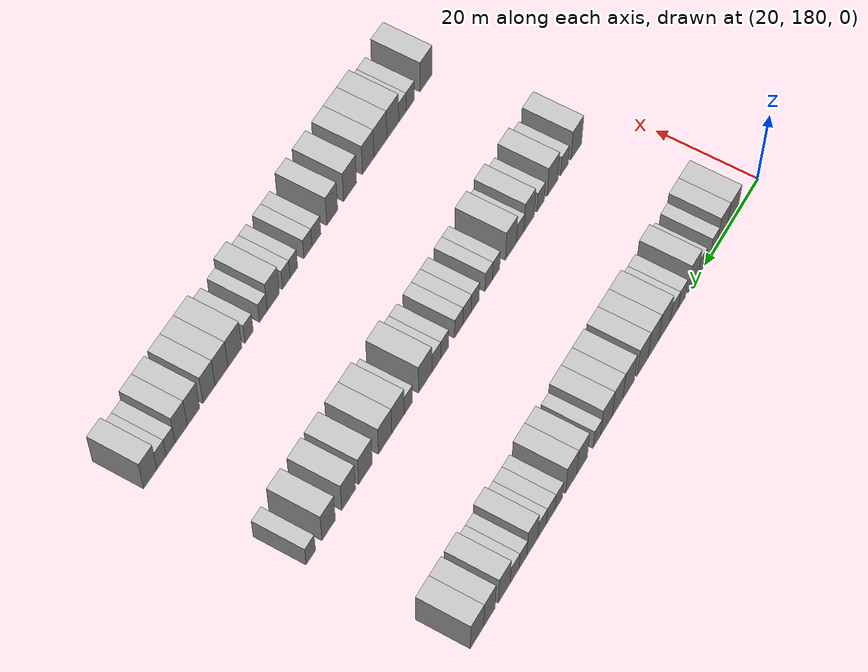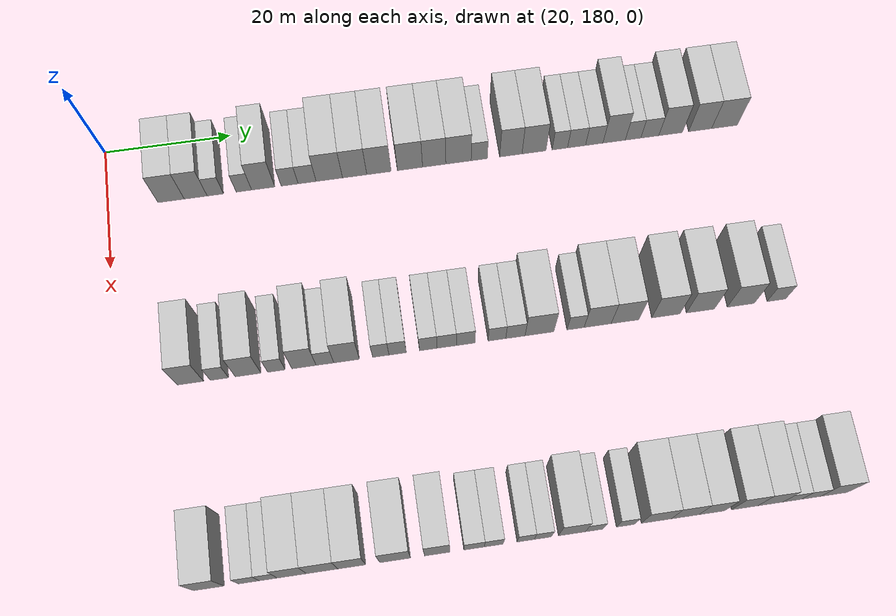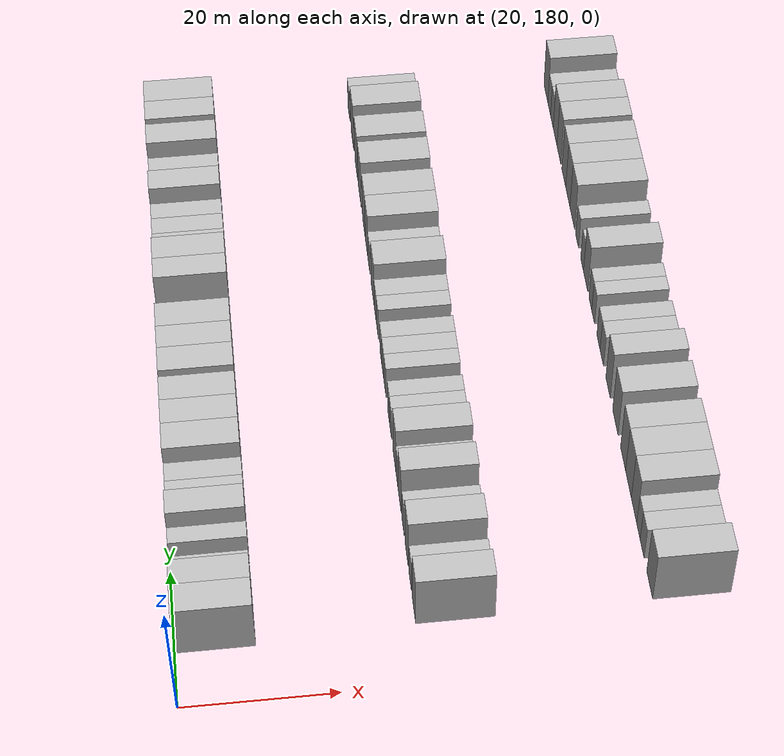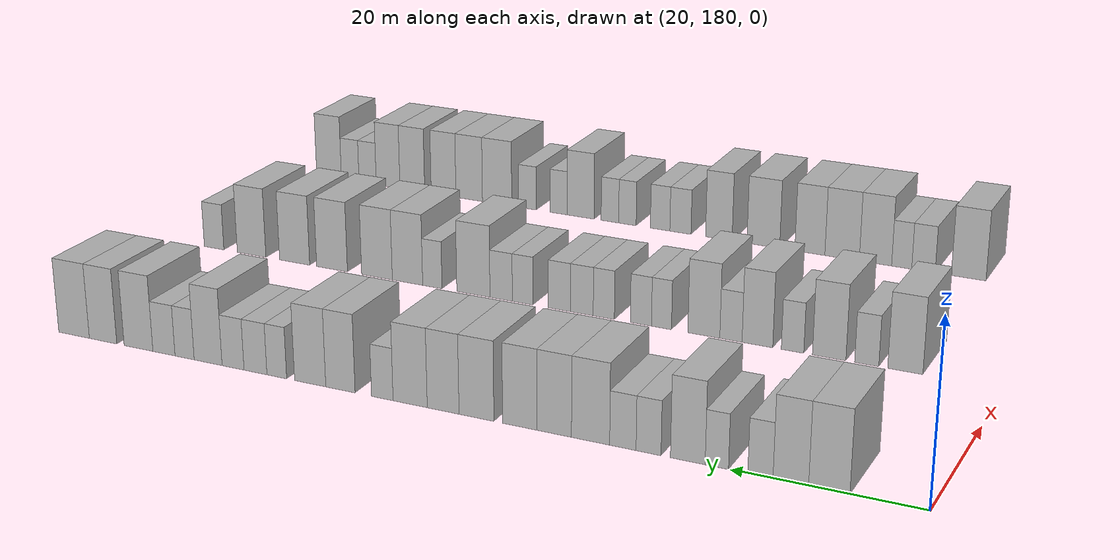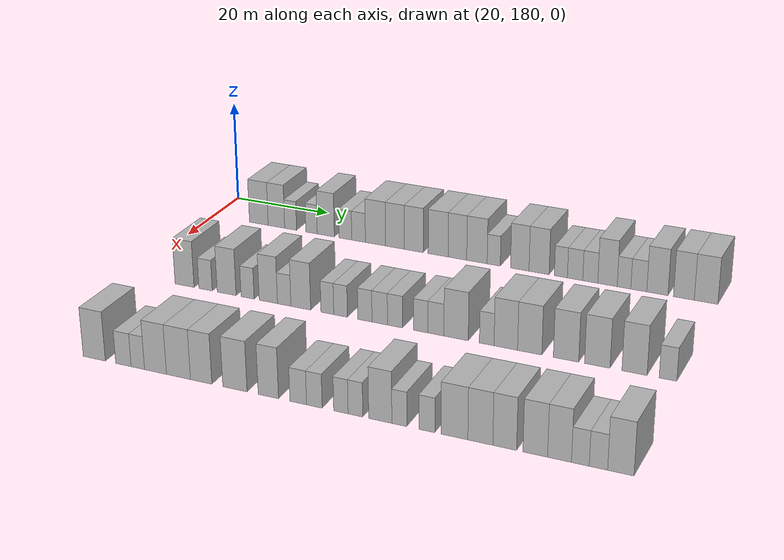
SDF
<sdf version="1.6">
 <world name="default">
  <model name="building_114">
   <static>1</static>
   <pose>25.0000 189.9331 0 0.000000 0.000000 0.000000</pose>
   <link name="link">
    <pose>0 0 4.50 0 0 0</pose>
    <collision name="collision"><geometry><box><size>10.0000 4.1233 9.0000</size></box></geometry></collision>
    <visual name="visual">
     <cast_shadows>0</cast_shadows>
     <geometry><box><size>10.0000 4.1233 9.0000</size></box></geometry>
     <material>
      <script>
       <uri>model://HANNAS_wall/materials/scripts</uri>
       <uri>model://HANNAS_wall/materials/textures</uri>
       <name>vrc/HANNAS_wall</name>
      </script>
     </material>
    </visual>
   </link>
  </model>
  <model name="building_115">
   <static>1</static>
   <pose>25.0000 193.7999 0 0.000000 0.000000 0.000000</pose>
   <link name="link">
    <pose>0 0 4.50 0 0 0</pose>
    <collision name="collision"><geometry><box><size>10.0000 3.6104 9.0000</size></box></geometry></collision>
    <visual name="visual">
     <cast_shadows>0</cast_shadows>
     <geometry><box><size>10.0000 3.6104 9.0000</size></box></geometry>
     <material>
      <script>
       <uri>model://HANNAS_wall/materials/scripts</uri>
       <uri>model://HANNAS_wall/materials/textures</uri>
       <name>vrc/HANNAS_wall</name>
      </script>
     </material>
    </visual>
   </link>
  </model>
  <model name="building_116">
   <static>1</static>
   <pose>25.0000 196.8978 0 0.000000 0.000000 0.000000</pose>
   <link name="link">
    <pose>0 0 3.00 0 0 0</pose>
    <collision name="collision"><geometry><box><size>10.0000 2.5853 6.0000</size></box></geometry></collision>
    <visual name="visual">
     <cast_shadows>0</cast_shadows>
     <geometry><box><size>10.0000 2.5853 6.0000</size></box></geometry>
     <material>
      <script>
       <uri>model://HANNAS_wall/materials/scripts</uri>
       <uri>model://HANNAS_wall/materials/textures</uri>
       <name>vrc/HANNAS_wall</name>
      </script>
     </material>
    </visual>
   </link>
  </model>
  <model name="building_117">
   <static>1</static>
   <pose>25.0000 201.4112 0 0.000000 0.000000 0.000000</pose>
   <link name="link">
    <pose>0 0 3.00 0 0 0</pose>
    <collision name="collision"><geometry><box><size>10.0000 2.4416 6.0000</size></box></geometry></collision>
    <visual name="visual">
     <cast_shadows>0</cast_shadows>
     <geometry><box><size>10.0000 2.4416 6.0000</size></box></geometry>
     <material>
      <script>
       <uri>model://HANNAS_wall/materials/scripts</uri>
       <uri>model://HANNAS_wall/materials/textures</uri>
       <name>vrc/HANNAS_wall</name>
      </script>
     </material>
    </visual>
   </link>
  </model>
  <model name="building_118">
   <static>1</static>
   <pose>25.0000 204.4689 0 0.000000 0.000000 0.000000</pose>
   <link name="link">
    <pose>0 0 4.50 0 0 0</pose>
    <collision name="collision"><geometry><box><size>10.0000 3.6738 9.0000</size></box></geometry></collision>
    <visual name="visual">
     <cast_shadows>0</cast_shadows>
     <geometry><box><size>10.0000 3.6738 9.0000</size></box></geometry>
     <material>
      <script>
       <uri>model://HANNAS_wall/materials/scripts</uri>
       <uri>model://HANNAS_wall/materials/textures</uri>
       <name>vrc/HANNAS_wall</name>
      </script>
     </material>
    </visual>
   </link>
  </model>
  <model name="building_119">
   <static>1</static>
   <pose>25.0000 208.6485 0 0.000000 0.000000 0.000000</pose>
   <link name="link">
    <pose>0 0 3.00 0 0 0</pose>
    <collision name="collision"><geometry><box><size>10.0000 2.6854 6.0000</size></box></geometry></collision>
    <visual name="visual">
     <cast_shadows>0</cast_shadows>
     <geometry><box><size>10.0000 2.6854 6.0000</size></box></geometry>
     <material>
      <script>
       <uri>model://HANNAS_wall/materials/scripts</uri>
       <uri>model://HANNAS_wall/materials/textures</uri>
       <name>vrc/HANNAS_wall</name>
      </script>
     </material>
    </visual>
   </link>
  </model>
  <model name="building_120">
   <static>1</static>
   <pose>25.0000 211.4258 0 0.000000 0.000000 0.000000</pose>
   <link name="link">
    <pose>0 0 3.00 0 0 0</pose>
    <collision name="collision"><geometry><box><size>10.0000 2.8692 6.0000</size></box></geometry></collision>
    <visual name="visual">
     <cast_shadows>0</cast_shadows>
     <geometry><box><size>10.0000 2.8692 6.0000</size></box></geometry>
     <material>
      <script>
       <uri>model://HANNAS_wall/materials/scripts</uri>
       <uri>model://HANNAS_wall/materials/textures</uri>
       <name>vrc/HANNAS_wall</name>
      </script>
     </material>
    </visual>
   </link>
  </model>
  <model name="building_121">
   <static>1</static>
   <pose>25.0000 214.9642 0 0.000000 0.000000 0.000000</pose>
   <link name="link">
    <pose>0 0 4.50 0 0 0</pose>
    <collision name="collision"><geometry><box><size>10.0000 4.2077 9.0000</size></box></geometry></collision>
    <visual name="visual">
     <cast_shadows>0</cast_shadows>
     <geometry><box><size>10.0000 4.2077 9.0000</size></box></geometry>
     <material>
      <script>
       <uri>model://HANNAS_wall/materials/scripts</uri>
       <uri>model://HANNAS_wall/materials/textures</uri>
       <name>vrc/HANNAS_wall</name>
      </script>
     </material>
    </visual>
   </link>
  </model>
  <model name="building_122">
   <static>1</static>
   <pose>25.0000 219.0067 0 0.000000 0.000000 0.000000</pose>
   <link name="link">
    <pose>0 0 4.50 0 0 0</pose>
    <collision name="collision"><geometry><box><size>10.0000 3.8772 9.0000</size></box></geometry></collision>
    <visual name="visual">
     <cast_shadows>0</cast_shadows>
     <geometry><box><size>10.0000 3.8772 9.0000</size></box></geometry>
     <material>
      <script>
       <uri>model://HANNAS_wall/materials/scripts</uri>
       <uri>model://HANNAS_wall/materials/textures</uri>
       <name>vrc/HANNAS_wall</name>
      </script>
     </material>
    </visual>
   </link>
  </model>
  <model name="building_123">
   <static>1</static>
   <pose>25.0000 222.8877 0 0.000000 0.000000 0.000000</pose>
   <link name="link">
    <pose>0 0 4.50 0 0 0</pose>
    <collision name="collision"><geometry><box><size>10.0000 3.8848 9.0000</size></box></geometry></collision>
    <visual name="visual">
     <cast_shadows>0</cast_shadows>
     <geometry><box><size>10.0000 3.8848 9.0000</size></box></geometry>
     <material>
      <script>
       <uri>model://HANNAS_wall/materials/scripts</uri>
       <uri>model://HANNAS_wall/materials/textures</uri>
       <name>vrc/HANNAS_wall</name>
      </script>
     </material>
    </visual>
   </link>
  </model>
  <model name="building_124">
   <static>1</static>
   <pose>25.0000 227.8502 0 0.000000 0.000000 0.000000</pose>
   <link name="link">
    <pose>0 0 4.50 0 0 0</pose>
    <collision name="collision"><geometry><box><size>10.0000 4.0403 9.0000</size></box></geometry></collision>
    <visual name="visual">
     <cast_shadows>0</cast_shadows>
     <geometry><box><size>10.0000 4.0403 9.0000</size></box></geometry>
     <material>
      <script>
       <uri>model://HANNAS_wall/materials/scripts</uri>
       <uri>model://HANNAS_wall/materials/textures</uri>
       <name>vrc/HANNAS_wall</name>
      </script>
     </material>
    </visual>
   </link>
  </model>
  <model name="building_125">
   <static>1</static>
   <pose>25.0000 231.7392 0 0.000000 0.000000 0.000000</pose>
   <link name="link">
    <pose>0 0 4.50 0 0 0</pose>
    <collision name="collision"><geometry><box><size>10.0000 3.7377 9.0000</size></box></geometry></collision>
    <visual name="visual">
     <cast_shadows>0</cast_shadows>
     <geometry><box><size>10.0000 3.7377 9.0000</size></box></geometry>
     <material>
      <script>
       <uri>model://HANNAS_wall/materials/scripts</uri>
       <uri>model://HANNAS_wall/materials/textures</uri>
       <name>vrc/HANNAS_wall</name>
      </script>
     </material>
    </visual>
   </link>
  </model>
  <model name="building_126">
   <static>1</static>
   <pose>25.0000 235.6451 0 0.000000 0.000000 0.000000</pose>
   <link name="link">
    <pose>0 0 4.50 0 0 0</pose>
    <collision name="collision"><geometry><box><size>10.0000 4.0741 9.0000</size></box></geometry></collision>
    <visual name="visual">
     <cast_shadows>0</cast_shadows>
     <geometry><box><size>10.0000 4.0741 9.0000</size></box></geometry>
     <material>
      <script>
       <uri>model://HANNAS_wall/materials/scripts</uri>
       <uri>model://HANNAS_wall/materials/textures</uri>
       <name>vrc/HANNAS_wall</name>
      </script>
     </material>
    </visual>
   </link>
  </model>
  <model name="building_127">
   <static>1</static>
   <pose>25.0000 238.9822 0 0.000000 0.000000 0.000000</pose>
   <link name="link">
    <pose>0 0 3.00 0 0 0</pose>
    <collision name="collision"><geometry><box><size>10.0000 2.6001 6.0000</size></box></geometry></collision>
    <visual name="visual">
     <cast_shadows>0</cast_shadows>
     <geometry><box><size>10.0000 2.6001 6.0000</size></box></geometry>
     <material>
      <script>
       <uri>model://HANNAS_wall/materials/scripts</uri>
       <uri>model://HANNAS_wall/materials/textures</uri>
       <name>vrc/HANNAS_wall</name>
      </script>
     </material>
    </visual>
   </link>
  </model>
  <model name="building_128">
   <static>1</static>
   <pose>25.0000 244.0883 0 0.000000 0.000000 0.000000</pose>
   <link name="link">
    <pose>0 0 4.50 0 0 0</pose>
    <collision name="collision"><geometry><box><size>10.0000 3.6121 9.0000</size></box></geometry></collision>
    <visual name="visual">
     <cast_shadows>0</cast_shadows>
     <geometry><box><size>10.0000 3.6121 9.0000</size></box></geometry>
     <material>
      <script>
       <uri>model://HANNAS_wall/materials/scripts</uri>
       <uri>model://HANNAS_wall/materials/textures</uri>
       <name>vrc/HANNAS_wall</name>
      </script>
     </material>
    </visual>
   </link>
  </model>
  <model name="building_129">
   <static>1</static>
   <pose>25.0000 247.8377 0 0.000000 0.000000 0.000000</pose>
   <link name="link">
    <pose>0 0 4.50 0 0 0</pose>
    <collision name="collision"><geometry><box><size>10.0000 3.8867 9.0000</size></box></geometry></collision>
    <visual name="visual">
     <cast_shadows>0</cast_shadows>
     <geometry><box><size>10.0000 3.8867 9.0000</size></box></geometry>
     <material>
      <script>
       <uri>model://HANNAS_wall/materials/scripts</uri>
       <uri>model://HANNAS_wall/materials/textures</uri>
       <name>vrc/HANNAS_wall</name>
      </script>
     </material>
    </visual>
   </link>
  </model>
  <model name="building_130">
   <static>1</static>
   <pose>25.0000 252.0319 0 0.000000 0.000000 0.000000</pose>
   <link name="link">
    <pose>0 0 3.00 0 0 0</pose>
    <collision name="collision"><geometry><box><size>10.0000 2.5018 6.0000</size></box></geometry></collision>
    <visual name="visual">
     <cast_shadows>0</cast_shadows>
     <geometry><box><size>10.0000 2.5018 6.0000</size></box></geometry>
     <material>
      <script>
       <uri>model://HANNAS_wall/materials/scripts</uri>
       <uri>model://HANNAS_wall/materials/textures</uri>
       <name>vrc/HANNAS_wall</name>
      </script>
     </material>
    </visual>
   </link>
  </model>
  <model name="building_131">
   <static>1</static>
   <pose>25.0000 254.7474 0 0.000000 0.000000 0.000000</pose>
   <link name="link">
    <pose>0 0 3.00 0 0 0</pose>
    <collision name="collision"><geometry><box><size>10.0000 2.9293 6.0000</size></box></geometry></collision>
    <visual name="visual">
     <cast_shadows>0</cast_shadows>
     <geometry><box><size>10.0000 2.9293 6.0000</size></box></geometry>
     <material>
      <script>
       <uri>model://HANNAS_wall/materials/scripts</uri>
       <uri>model://HANNAS_wall/materials/textures</uri>
       <name>vrc/HANNAS_wall</name>
      </script>
     </material>
    </visual>
   </link>
  </model>
  <model name="building_132">
   <static>1</static>
   <pose>25.0000 257.6296 0 0.000000 0.000000 0.000000</pose>
   <link name="link">
    <pose>0 0 3.00 0 0 0</pose>
    <collision name="collision"><geometry><box><size>10.0000 2.8352 6.0000</size></box></geometry></collision>
    <visual name="visual">
     <cast_shadows>0</cast_shadows>
     <geometry><box><size>10.0000 2.8352 6.0000</size></box></geometry>
     <material>
      <script>
       <uri>model://HANNAS_wall/materials/scripts</uri>
       <uri>model://HANNAS_wall/materials/textures</uri>
       <name>vrc/HANNAS_wall</name>
      </script>
     </material>
    </visual>
   </link>
  </model>
  <model name="building_133">
   <static>1</static>
   <pose>25.0000 260.8713 0 0.000000 0.000000 0.000000</pose>
   <link name="link">
    <pose>0 0 4.50 0 0 0</pose>
    <collision name="collision"><geometry><box><size>10.0000 3.6482 9.0000</size></box></geometry></collision>
    <visual name="visual">
     <cast_shadows>0</cast_shadows>
     <geometry><box><size>10.0000 3.6482 9.0000</size></box></geometry>
     <material>
      <script>
       <uri>model://HANNAS_wall/materials/scripts</uri>
       <uri>model://HANNAS_wall/materials/textures</uri>
       <name>vrc/HANNAS_wall</name>
      </script>
     </material>
    </visual>
   </link>
  </model>
  <model name="building_134">
   <static>1</static>
   <pose>25.0000 263.9621 0 0.000000 0.000000 0.000000</pose>
   <link name="link">
    <pose>0 0 3.00 0 0 0</pose>
    <collision name="collision"><geometry><box><size>10.0000 2.5335 6.0000</size></box></geometry></collision>
    <visual name="visual">
     <cast_shadows>0</cast_shadows>
     <geometry><box><size>10.0000 2.5335 6.0000</size></box></geometry>
     <material>
      <script>
       <uri>model://HANNAS_wall/materials/scripts</uri>
       <uri>model://HANNAS_wall/materials/textures</uri>
       <name>vrc/HANNAS_wall</name>
      </script>
     </material>
    </visual>
   </link>
  </model>
  <model name="building_135">
   <static>1</static>
   <pose>25.0000 266.7052 0 0.000000 0.000000 0.000000</pose>
   <link name="link">
    <pose>0 0 3.00 0 0 0</pose>
    <collision name="collision"><geometry><box><size>10.0000 2.9526 6.0000</size></box></geometry></collision>
    <visual name="visual">
     <cast_shadows>0</cast_shadows>
     <geometry><box><size>10.0000 2.9526 6.0000</size></box></geometry>
     <material>
      <script>
       <uri>model://HANNAS_wall/materials/scripts</uri>
       <uri>model://HANNAS_wall/materials/textures</uri>
       <name>vrc/HANNAS_wall</name>
      </script>
     </material>
    </visual>
   </link>
  </model>
  <model name="building_136">
   <static>1</static>
   <pose>25.0000 270.1234 0 0.000000 0.000000 0.000000</pose>
   <link name="link">
    <pose>0 0 4.50 0 0 0</pose>
    <collision name="collision"><geometry><box><size>10.0000 3.8839 9.0000</size></box></geometry></collision>
    <visual name="visual">
     <cast_shadows>0</cast_shadows>
     <geometry><box><size>10.0000 3.8839 9.0000</size></box></geometry>
     <material>
      <script>
       <uri>model://HANNAS_wall/materials/scripts</uri>
       <uri>model://HANNAS_wall/materials/textures</uri>
       <name>vrc/HANNAS_wall</name>
      </script>
     </material>
    </visual>
   </link>
  </model>
  <model name="building_137">
   <static>1</static>
   <pose>25.0000 274.9523 0 0.000000 0.000000 0.000000</pose>
   <link name="link">
    <pose>0 0 4.50 0 0 0</pose>
    <collision name="collision"><geometry><box><size>10.0000 3.7741 9.0000</size></box></geometry></collision>
    <visual name="visual">
     <cast_shadows>0</cast_shadows>
     <geometry><box><size>10.0000 3.7741 9.0000</size></box></geometry>
     <material>
      <script>
       <uri>model://HANNAS_wall/materials/scripts</uri>
       <uri>model://HANNAS_wall/materials/textures</uri>
       <name>vrc/HANNAS_wall</name>
      </script>
     </material>
    </visual>
   </link>
  </model>
  <model name="building_138">
   <static>1</static>
   <pose>25.0000 278.9635 0 0.000000 0.000000 0.000000</pose>
   <link name="link">
    <pose>0 0 4.50 0 0 0</pose>
    <collision name="collision"><geometry><box><size>10.0000 4.2483 9.0000</size></box></geometry></collision>
    <visual name="visual">
     <cast_shadows>0</cast_shadows>
     <geometry><box><size>10.0000 4.2483 9.0000</size></box></geometry>
     <material>
      <script>
       <uri>model://HANNAS_wall/materials/scripts</uri>
       <uri>model://HANNAS_wall/materials/textures</uri>
       <name>vrc/HANNAS_wall</name>
      </script>
     </material>
    </visual>
   </link>
  </model>
  <model name="building_259">
   <static>1</static>
   <pose>55.0000 190.8983 0 0.000000 0.000000 0.000000</pose>
   <link name="link">
    <pose>0 0 4.50 0 0 0</pose>
    <collision name="collision"><geometry><box><size>10.0000 3.9245 9.0000</size></box></geometry></collision>
    <visual name="visual">
     <cast_shadows>0</cast_shadows>
     <geometry><box><size>10.0000 3.9245 9.0000</size></box></geometry>
     <material>
      <script>
       <uri>model://HANNAS_wall/materials/scripts</uri>
       <uri>model://HANNAS_wall/materials/textures</uri>
       <name>vrc/HANNAS_wall</name>
      </script>
     </material>
    </visual>
   </link>
  </model>
  <model name="building_260">
   <static>1</static>
   <pose>55.0000 195.2254 0 0.000000 0.000000 0.000000</pose>
   <link name="link">
    <pose>0 0 3.00 0 0 0</pose>
    <collision name="collision"><geometry><box><size>10.0000 2.7297 6.0000</size></box></geometry></collision>
    <visual name="visual">
     <cast_shadows>0</cast_shadows>
     <geometry><box><size>10.0000 2.7297 6.0000</size></box></geometry>
     <material>
      <script>
       <uri>model://HANNAS_wall/materials/scripts</uri>
       <uri>model://HANNAS_wall/materials/textures</uri>
       <name>vrc/HANNAS_wall</name>
      </script>
     </material>
    </visual>
   </link>
  </model>
  <model name="building_261">
   <static>1</static>
   <pose>55.0000 199.5125 0 0.000000 0.000000 0.000000</pose>
   <link name="link">
    <pose>0 0 4.50 0 0 0</pose>
    <collision name="collision"><geometry><box><size>10.0000 3.8445 9.0000</size></box></geometry></collision>
    <visual name="visual">
     <cast_shadows>0</cast_shadows>
     <geometry><box><size>10.0000 3.8445 9.0000</size></box></geometry>
     <material>
      <script>
       <uri>model://HANNAS_wall/materials/scripts</uri>
       <uri>model://HANNAS_wall/materials/textures</uri>
       <name>vrc/HANNAS_wall</name>
      </script>
     </material>
    </visual>
   </link>
  </model>
  <model name="building_262">
   <static>1</static>
   <pose>55.0000 203.7471 0 0.000000 0.000000 0.000000</pose>
   <link name="link">
    <pose>0 0 3.00 0 0 0</pose>
    <collision name="collision"><geometry><box><size>10.0000 2.6248 6.0000</size></box></geometry></collision>
    <visual name="visual">
     <cast_shadows>0</cast_shadows>
     <geometry><box><size>10.0000 2.6248 6.0000</size></box></geometry>
     <material>
      <script>
       <uri>model://HANNAS_wall/materials/scripts</uri>
       <uri>model://HANNAS_wall/materials/textures</uri>
       <name>vrc/HANNAS_wall</name>
      </script>
     </material>
    </visual>
   </link>
  </model>
  <model name="building_263">
   <static>1</static>
   <pose>55.0000 207.8755 0 0.000000 0.000000 0.000000</pose>
   <link name="link">
    <pose>0 0 4.50 0 0 0</pose>
    <collision name="collision"><geometry><box><size>10.0000 3.6319 9.0000</size></box></geometry></collision>
    <visual name="visual">
     <cast_shadows>0</cast_shadows>
     <geometry><box><size>10.0000 3.6319 9.0000</size></box></geometry>
     <material>
      <script>
       <uri>model://HANNAS_wall/materials/scripts</uri>
       <uri>model://HANNAS_wall/materials/textures</uri>
       <name>vrc/HANNAS_wall</name>
      </script>
     </material>
    </visual>
   </link>
  </model>
  <model name="building_264">
   <static>1</static>
   <pose>55.0000 211.0214 0 0.000000 0.000000 0.000000</pose>
   <link name="link">
    <pose>0 0 3.00 0 0 0</pose>
    <collision name="collision"><geometry><box><size>10.0000 2.6601 6.0000</size></box></geometry></collision>
    <visual name="visual">
     <cast_shadows>0</cast_shadows>
     <geometry><box><size>10.0000 2.6601 6.0000</size></box></geometry>
     <material>
      <script>
       <uri>model://HANNAS_wall/materials/scripts</uri>
       <uri>model://HANNAS_wall/materials/textures</uri>
       <name>vrc/HANNAS_wall</name>
      </script>
     </material>
    </visual>
   </link>
  </model>
  <model name="building_265">
   <static>1</static>
   <pose>55.0000 214.2834 0 0.000000 0.000000 0.000000</pose>
   <link name="link">
    <pose>0 0 4.50 0 0 0</pose>
    <collision name="collision"><geometry><box><size>10.0000 3.8639 9.0000</size></box></geometry></collision>
    <visual name="visual">
     <cast_shadows>0</cast_shadows>
     <geometry><box><size>10.0000 3.8639 9.0000</size></box></geometry>
     <material>
      <script>
       <uri>model://HANNAS_wall/materials/scripts</uri>
       <uri>model://HANNAS_wall/materials/textures</uri>
       <name>vrc/HANNAS_wall</name>
      </script>
     </material>
    </visual>
   </link>
  </model>
  <model name="building_266">
   <static>1</static>
   <pose>55.0000 219.4503 0 0.000000 0.000000 0.000000</pose>
   <link name="link">
    <pose>0 0 3.00 0 0 0</pose>
    <collision name="collision"><geometry><box><size>10.0000 2.4699 6.0000</size></box></geometry></collision>
    <visual name="visual">
     <cast_shadows>0</cast_shadows>
     <geometry><box><size>10.0000 2.4699 6.0000</size></box></geometry>
     <material>
      <script>
       <uri>model://HANNAS_wall/materials/scripts</uri>
       <uri>model://HANNAS_wall/materials/textures</uri>
       <name>vrc/HANNAS_wall</name>
      </script>
     </material>
    </visual>
   </link>
  </model>
  <model name="building_267">
   <static>1</static>
   <pose>55.0000 221.9946 0 0.000000 0.000000 0.000000</pose>
   <link name="link">
    <pose>0 0 3.00 0 0 0</pose>
    <collision name="collision"><geometry><box><size>10.0000 2.6187 6.0000</size></box></geometry></collision>
    <visual name="visual">
     <cast_shadows>0</cast_shadows>
     <geometry><box><size>10.0000 2.6187 6.0000</size></box></geometry>
     <material>
      <script>
       <uri>model://HANNAS_wall/materials/scripts</uri>
       <uri>model://HANNAS_wall/materials/textures</uri>
       <name>vrc/HANNAS_wall</name>
      </script>
     </material>
    </visual>
   </link>
  </model>
  <model name="building_268">
   <static>1</static>
   <pose>55.0000 226.6387 0 0.000000 0.000000 0.000000</pose>
   <link name="link">
    <pose>0 0 3.00 0 0 0</pose>
    <collision name="collision"><geometry><box><size>10.0000 2.6697 6.0000</size></box></geometry></collision>
    <visual name="visual">
     <cast_shadows>0</cast_shadows>
     <geometry><box><size>10.0000 2.6697 6.0000</size></box></geometry>
     <material>
      <script>
       <uri>model://HANNAS_wall/materials/scripts</uri>
       <uri>model://HANNAS_wall/materials/textures</uri>
       <name>vrc/HANNAS_wall</name>
      </script>
     </material>
    </visual>
   </link>
  </model>
  <model name="building_269">
   <static>1</static>
   <pose>55.0000 229.4325 0 0.000000 0.000000 0.000000</pose>
   <link name="link">
    <pose>0 0 3.00 0 0 0</pose>
    <collision name="collision"><geometry><box><size>10.0000 2.9179 6.0000</size></box></geometry></collision>
    <visual name="visual">
     <cast_shadows>0</cast_shadows>
     <geometry><box><size>10.0000 2.9179 6.0000</size></box></geometry>
     <material>
      <script>
       <uri>model://HANNAS_wall/materials/scripts</uri>
       <uri>model://HANNAS_wall/materials/textures</uri>
       <name>vrc/HANNAS_wall</name>
      </script>
     </material>
    </visual>
   </link>
  </model>
  <model name="building_270">
   <static>1</static>
   <pose>55.0000 232.3059 0 0.000000 0.000000 0.000000</pose>
   <link name="link">
    <pose>0 0 3.00 0 0 0</pose>
    <collision name="collision"><geometry><box><size>10.0000 2.8288 6.0000</size></box></geometry></collision>
    <visual name="visual">
     <cast_shadows>0</cast_shadows>
     <geometry><box><size>10.0000 2.8288 6.0000</size></box></geometry>
     <material>
      <script>
       <uri>model://HANNAS_wall/materials/scripts</uri>
       <uri>model://HANNAS_wall/materials/textures</uri>
       <name>vrc/HANNAS_wall</name>
      </script>
     </material>
    </visual>
   </link>
  </model>
  <model name="building_271">
   <static>1</static>
   <pose>55.0000 237.0612 0 0.000000 0.000000 0.000000</pose>
   <link name="link">
    <pose>0 0 3.00 0 0 0</pose>
    <collision name="collision"><geometry><box><size>10.0000 2.6819 6.0000</size></box></geometry></collision>
    <visual name="visual">
     <cast_shadows>0</cast_shadows>
     <geometry><box><size>10.0000 2.6819 6.0000</size></box></geometry>
     <material>
      <script>
       <uri>model://HANNAS_wall/materials/scripts</uri>
       <uri>model://HANNAS_wall/materials/textures</uri>
       <name>vrc/HANNAS_wall</name>
      </script>
     </material>
    </visual>
   </link>
  </model>
  <model name="building_272">
   <static>1</static>
   <pose>55.0000 239.8779 0 0.000000 0.000000 0.000000</pose>
   <link name="link">
    <pose>0 0 3.00 0 0 0</pose>
    <collision name="collision"><geometry><box><size>10.0000 2.9515 6.0000</size></box></geometry></collision>
    <visual name="visual">
     <cast_shadows>0</cast_shadows>
     <geometry><box><size>10.0000 2.9515 6.0000</size></box></geometry>
     <material>
      <script>
       <uri>model://HANNAS_wall/materials/scripts</uri>
       <uri>model://HANNAS_wall/materials/textures</uri>
       <name>vrc/HANNAS_wall</name>
      </script>
     </material>
    </visual>
   </link>
  </model>
  <model name="building_273">
   <static>1</static>
   <pose>55.0000 243.5659 0 0.000000 0.000000 0.000000</pose>
   <link name="link">
    <pose>0 0 4.50 0 0 0</pose>
    <collision name="collision"><geometry><box><size>10.0000 4.4244 9.0000</size></box></geometry></collision>
    <visual name="visual">
     <cast_shadows>0</cast_shadows>
     <geometry><box><size>10.0000 4.4244 9.0000</size></box></geometry>
     <material>
      <script>
       <uri>model://HANNAS_wall/materials/scripts</uri>
       <uri>model://HANNAS_wall/materials/textures</uri>
       <name>vrc/HANNAS_wall</name>
      </script>
     </material>
    </visual>
   </link>
  </model>
  <model name="building_274">
   <static>1</static>
   <pose>55.0000 249.0920 0 0.000000 0.000000 0.000000</pose>
   <link name="link">
    <pose>0 0 3.00 0 0 0</pose>
    <collision name="collision"><geometry><box><size>10.0000 2.6277 6.0000</size></box></geometry></collision>
    <visual name="visual">
     <cast_shadows>0</cast_shadows>
     <geometry><box><size>10.0000 2.6277 6.0000</size></box></geometry>
     <material>
      <script>
       <uri>model://HANNAS_wall/materials/scripts</uri>
       <uri>model://HANNAS_wall/materials/textures</uri>
       <name>vrc/HANNAS_wall</name>
      </script>
     </material>
    </visual>
   </link>
  </model>
  <model name="building_275">
   <static>1</static>
   <pose>55.0000 252.4919 0 0.000000 0.000000 0.000000</pose>
   <link name="link">
    <pose>0 0 4.50 0 0 0</pose>
    <collision name="collision"><geometry><box><size>10.0000 4.1720 9.0000</size></box></geometry></collision>
    <visual name="visual">
     <cast_shadows>0</cast_shadows>
     <geometry><box><size>10.0000 4.1720 9.0000</size></box></geometry>
     <material>
      <script>
       <uri>model://HANNAS_wall/materials/scripts</uri>
       <uri>model://HANNAS_wall/materials/textures</uri>
       <name>vrc/HANNAS_wall</name>
      </script>
     </material>
    </visual>
   </link>
  </model>
  <model name="building_276">
   <static>1</static>
   <pose>55.0000 256.7138 0 0.000000 0.000000 0.000000</pose>
   <link name="link">
    <pose>0 0 4.50 0 0 0</pose>
    <collision name="collision"><geometry><box><size>10.0000 4.2719 9.0000</size></box></geometry></collision>
    <visual name="visual">
     <cast_shadows>0</cast_shadows>
     <geometry><box><size>10.0000 4.2719 9.0000</size></box></geometry>
     <material>
      <script>
       <uri>model://HANNAS_wall/materials/scripts</uri>
       <uri>model://HANNAS_wall/materials/textures</uri>
       <name>vrc/HANNAS_wall</name>
      </script>
     </material>
    </visual>
   </link>
  </model>
  <model name="building_277">
   <static>1</static>
   <pose>55.0000 263.0386 0 0.000000 0.000000 0.000000</pose>
   <link name="link">
    <pose>0 0 4.50 0 0 0</pose>
    <collision name="collision"><geometry><box><size>10.0000 4.3777 9.0000</size></box></geometry></collision>
    <visual name="visual">
     <cast_shadows>0</cast_shadows>
     <geometry><box><size>10.0000 4.3777 9.0000</size></box></geometry>
     <material>
      <script>
       <uri>model://HANNAS_wall/materials/scripts</uri>
       <uri>model://HANNAS_wall/materials/textures</uri>
       <name>vrc/HANNAS_wall</name>
      </script>
     </material>
    </visual>
   </link>
  </model>
  <model name="building_278">
   <static>1</static>
   <pose>55.0000 268.4042 0 0.000000 0.000000 0.000000</pose>
   <link name="link">
    <pose>0 0 4.50 0 0 0</pose>
    <collision name="collision"><geometry><box><size>10.0000 4.3535 9.0000</size></box></geometry></collision>
    <visual name="visual">
     <cast_shadows>0</cast_shadows>
     <geometry><box><size>10.0000 4.3535 9.0000</size></box></geometry>
     <material>
      <script>
       <uri>model://HANNAS_wall/materials/scripts</uri>
       <uri>model://HANNAS_wall/materials/textures</uri>
       <name>vrc/HANNAS_wall</name>
      </script>
     </material>
    </visual>
   </link>
  </model>
  <model name="building_279">
   <static>1</static>
   <pose>55.0000 274.6913 0 0.000000 0.000000 0.000000</pose>
   <link name="link">
    <pose>0 0 4.50 0 0 0</pose>
    <collision name="collision"><geometry><box><size>10.0000 4.2207 9.0000</size></box></geometry></collision>
    <visual name="visual">
     <cast_shadows>0</cast_shadows>
     <geometry><box><size>10.0000 4.2207 9.0000</size></box></geometry>
     <material>
      <script>
       <uri>model://HANNAS_wall/materials/scripts</uri>
       <uri>model://HANNAS_wall/materials/textures</uri>
       <name>vrc/HANNAS_wall</name>
      </script>
     </material>
    </visual>
   </link>
  </model>
  <model name="building_280">
   <static>1</static>
   <pose>55.0000 280.2665 0 0.000000 0.000000 0.000000</pose>
   <link name="link">
    <pose>0 0 3.00 0 0 0</pose>
    <collision name="collision"><geometry><box><size>10.0000 2.9298 6.0000</size></box></geometry></collision>
    <visual name="visual">
     <cast_shadows>0</cast_shadows>
     <geometry><box><size>10.0000 2.9298 6.0000</size></box></geometry>
     <material>
      <script>
       <uri>model://HANNAS_wall/materials/scripts</uri>
       <uri>model://HANNAS_wall/materials/textures</uri>
       <name>vrc/HANNAS_wall</name>
      </script>
     </material>
    </visual>
   </link>
  </model>
  <model name="building_401">
   <static>1</static>
   <pose>85.0000 191.4563 0 0.000000 0.000000 0.000000</pose>
   <link name="link">
    <pose>0 0 4.50 0 0 0</pose>
    <collision name="collision"><geometry><box><size>10.0000 4.2702 9.0000</size></box></geometry></collision>
    <visual name="visual">
     <cast_shadows>0</cast_shadows>
     <geometry><box><size>10.0000 4.2702 9.0000</size></box></geometry>
     <material>
      <script>
       <uri>model://HANNAS_wall/materials/scripts</uri>
       <uri>model://HANNAS_wall/materials/textures</uri>
       <name>vrc/HANNAS_wall</name>
      </script>
     </material>
    </visual>
   </link>
  </model>
  <model name="building_402">
   <static>1</static>
   <pose>85.0000 197.0559 0 0.000000 0.000000 0.000000</pose>
   <link name="link">
    <pose>0 0 3.00 0 0 0</pose>
    <collision name="collision"><geometry><box><size>10.0000 2.9291 6.0000</size></box></geometry></collision>
    <visual name="visual">
     <cast_shadows>0</cast_shadows>
     <geometry><box><size>10.0000 2.9291 6.0000</size></box></geometry>
     <material>
      <script>
       <uri>model://HANNAS_wall/materials/scripts</uri>
       <uri>model://HANNAS_wall/materials/textures</uri>
       <name>vrc/HANNAS_wall</name>
      </script>
     </material>
    </visual>
   </link>
  </model>
  <model name="building_403">
   <static>1</static>
   <pose>85.0000 199.7904 0 0.000000 0.000000 0.000000</pose>
   <link name="link">
    <pose>0 0 3.00 0 0 0</pose>
    <collision name="collision"><geometry><box><size>10.0000 2.5399 6.0000</size></box></geometry></collision>
    <visual name="visual">
     <cast_shadows>0</cast_shadows>
     <geometry><box><size>10.0000 2.5399 6.0000</size></box></geometry>
     <material>
      <script>
       <uri>model://HANNAS_wall/materials/scripts</uri>
       <uri>model://HANNAS_wall/materials/textures</uri>
       <name>vrc/HANNAS_wall</name>
      </script>
     </material>
    </visual>
   </link>
  </model>
  <model name="building_404">
   <static>1</static>
   <pose>85.0000 203.1220 0 0.000000 0.000000 0.000000</pose>
   <link name="link">
    <pose>0 0 4.50 0 0 0</pose>
    <collision name="collision"><geometry><box><size>10.0000 4.1232 9.0000</size></box></geometry></collision>
    <visual name="visual">
     <cast_shadows>0</cast_shadows>
     <geometry><box><size>10.0000 4.1232 9.0000</size></box></geometry>
     <material>
      <script>
       <uri>model://HANNAS_wall/materials/scripts</uri>
       <uri>model://HANNAS_wall/materials/textures</uri>
       <name>vrc/HANNAS_wall</name>
      </script>
     </material>
    </visual>
   </link>
  </model>
  <model name="building_405">
   <static>1</static>
   <pose>85.0000 207.4087 0 0.000000 0.000000 0.000000</pose>
   <link name="link">
    <pose>0 0 4.50 0 0 0</pose>
    <collision name="collision"><geometry><box><size>10.0000 4.4502 9.0000</size></box></geometry></collision>
    <visual name="visual">
     <cast_shadows>0</cast_shadows>
     <geometry><box><size>10.0000 4.4502 9.0000</size></box></geometry>
     <material>
      <script>
       <uri>model://HANNAS_wall/materials/scripts</uri>
       <uri>model://HANNAS_wall/materials/textures</uri>
       <name>vrc/HANNAS_wall</name>
      </script>
     </material>
    </visual>
   </link>
  </model>
  <model name="building_406">
   <static>1</static>
   <pose>85.0000 211.6024 0 0.000000 0.000000 0.000000</pose>
   <link name="link">
    <pose>0 0 4.50 0 0 0</pose>
    <collision name="collision"><geometry><box><size>10.0000 3.9372 9.0000</size></box></geometry></collision>
    <visual name="visual">
     <cast_shadows>0</cast_shadows>
     <geometry><box><size>10.0000 3.9372 9.0000</size></box></geometry>
     <material>
      <script>
       <uri>model://HANNAS_wall/materials/scripts</uri>
       <uri>model://HANNAS_wall/materials/textures</uri>
       <name>vrc/HANNAS_wall</name>
      </script>
     </material>
    </visual>
   </link>
  </model>
  <model name="building_407">
   <static>1</static>
   <pose>85.0000 217.7563 0 0.000000 0.000000 0.000000</pose>
   <link name="link">
    <pose>0 0 4.50 0 0 0</pose>
    <collision name="collision"><geometry><box><size>10.0000 4.3707 9.0000</size></box></geometry></collision>
    <visual name="visual">
     <cast_shadows>0</cast_shadows>
     <geometry><box><size>10.0000 4.3707 9.0000</size></box></geometry>
     <material>
      <script>
       <uri>model://HANNAS_wall/materials/scripts</uri>
       <uri>model://HANNAS_wall/materials/textures</uri>
       <name>vrc/HANNAS_wall</name>
      </script>
     </material>
    </visual>
   </link>
  </model>
  <model name="building_408">
   <static>1</static>
   <pose>85.0000 223.7450 0 0.000000 0.000000 0.000000</pose>
   <link name="link">
    <pose>0 0 4.50 0 0 0</pose>
    <collision name="collision"><geometry><box><size>10.0000 3.6068 9.0000</size></box></geometry></collision>
    <visual name="visual">
     <cast_shadows>0</cast_shadows>
     <geometry><box><size>10.0000 3.6068 9.0000</size></box></geometry>
     <material>
      <script>
       <uri>model://HANNAS_wall/materials/scripts</uri>
       <uri>model://HANNAS_wall/materials/textures</uri>
       <name>vrc/HANNAS_wall</name>
      </script>
     </material>
    </visual>
   </link>
  </model>
  <model name="building_409">
   <static>1</static>
   <pose>85.0000 229.0085 0 0.000000 0.000000 0.000000</pose>
   <link name="link">
    <pose>0 0 3.00 0 0 0</pose>
    <collision name="collision"><geometry><box><size>10.0000 2.9201 6.0000</size></box></geometry></collision>
    <visual name="visual">
     <cast_shadows>0</cast_shadows>
     <geometry><box><size>10.0000 2.9201 6.0000</size></box></geometry>
     <material>
      <script>
       <uri>model://HANNAS_wall/materials/scripts</uri>
       <uri>model://HANNAS_wall/materials/textures</uri>
       <name>vrc/HANNAS_wall</name>
      </script>
     </material>
    </visual>
   </link>
  </model>
  <model name="building_410">
   <static>1</static>
   <pose>85.0000 231.8250 0 0.000000 0.000000 0.000000</pose>
   <link name="link">
    <pose>0 0 3.00 0 0 0</pose>
    <collision name="collision"><geometry><box><size>10.0000 2.7130 6.0000</size></box></geometry></collision>
    <visual name="visual">
     <cast_shadows>0</cast_shadows>
     <geometry><box><size>10.0000 2.7130 6.0000</size></box></geometry>
     <material>
      <script>
       <uri>model://HANNAS_wall/materials/scripts</uri>
       <uri>model://HANNAS_wall/materials/textures</uri>
       <name>vrc/HANNAS_wall</name>
      </script>
     </material>
    </visual>
   </link>
  </model>
  <model name="building_411">
   <static>1</static>
   <pose>85.0000 236.4154 0 0.000000 0.000000 0.000000</pose>
   <link name="link">
    <pose>0 0 3.00 0 0 0</pose>
    <collision name="collision"><geometry><box><size>10.0000 2.4678 6.0000</size></box></geometry></collision>
    <visual name="visual">
     <cast_shadows>0</cast_shadows>
     <geometry><box><size>10.0000 2.4678 6.0000</size></box></geometry>
     <material>
      <script>
       <uri>model://HANNAS_wall/materials/scripts</uri>
       <uri>model://HANNAS_wall/materials/textures</uri>
       <name>vrc/HANNAS_wall</name>
      </script>
     </material>
    </visual>
   </link>
  </model>
  <model name="building_412">
   <static>1</static>
   <pose>85.0000 238.8985 0 0.000000 0.000000 0.000000</pose>
   <link name="link">
    <pose>0 0 3.00 0 0 0</pose>
    <collision name="collision"><geometry><box><size>10.0000 2.4983 6.0000</size></box></geometry></collision>
    <visual name="visual">
     <cast_shadows>0</cast_shadows>
     <geometry><box><size>10.0000 2.4983 6.0000</size></box></geometry>
     <material>
      <script>
       <uri>model://HANNAS_wall/materials/scripts</uri>
       <uri>model://HANNAS_wall/materials/textures</uri>
       <name>vrc/HANNAS_wall</name>
      </script>
     </material>
    </visual>
   </link>
  </model>
  <model name="building_413">
   <static>1</static>
   <pose>85.0000 243.0957 0 0.000000 0.000000 0.000000</pose>
   <link name="link">
    <pose>0 0 4.50 0 0 0</pose>
    <collision name="collision"><geometry><box><size>10.0000 3.8961 9.0000</size></box></geometry></collision>
    <visual name="visual">
     <cast_shadows>0</cast_shadows>
     <geometry><box><size>10.0000 3.8961 9.0000</size></box></geometry>
     <material>
      <script>
       <uri>model://HANNAS_wall/materials/scripts</uri>
       <uri>model://HANNAS_wall/materials/textures</uri>
       <name>vrc/HANNAS_wall</name>
      </script>
     </material>
    </visual>
   </link>
  </model>
  <model name="building_414">
   <static>1</static>
   <pose>85.0000 246.2940 0 0.000000 0.000000 0.000000</pose>
   <link name="link">
    <pose>0 0 3.00 0 0 0</pose>
    <collision name="collision"><geometry><box><size>10.0000 2.5005 6.0000</size></box></geometry></collision>
    <visual name="visual">
     <cast_shadows>0</cast_shadows>
     <geometry><box><size>10.0000 2.5005 6.0000</size></box></geometry>
     <material>
      <script>
       <uri>model://HANNAS_wall/materials/scripts</uri>
       <uri>model://HANNAS_wall/materials/textures</uri>
       <name>vrc/HANNAS_wall</name>
      </script>
     </material>
    </visual>
   </link>
  </model>
  <model name="building_415">
   <static>1</static>
   <pose>85.0000 250.8579 0 0.000000 0.000000 0.000000</pose>
   <link name="link">
    <pose>0 0 3.00 0 0 0</pose>
    <collision name="collision"><geometry><box><size>10.0000 2.6274 6.0000</size></box></geometry></collision>
    <visual name="visual">
     <cast_shadows>0</cast_shadows>
     <geometry><box><size>10.0000 2.6274 6.0000</size></box></geometry>
     <material>
      <script>
       <uri>model://HANNAS_wall/materials/scripts</uri>
       <uri>model://HANNAS_wall/materials/textures</uri>
       <name>vrc/HANNAS_wall</name>
      </script>
     </material>
    </visual>
   </link>
  </model>
  <model name="building_416">
   <static>1</static>
   <pose>85.0000 255.3590 0 0.000000 0.000000 0.000000</pose>
   <link name="link">
    <pose>0 0 4.50 0 0 0</pose>
    <collision name="collision"><geometry><box><size>10.0000 4.3748 9.0000</size></box></geometry></collision>
    <visual name="visual">
     <cast_shadows>0</cast_shadows>
     <geometry><box><size>10.0000 4.3748 9.0000</size></box></geometry>
     <material>
      <script>
       <uri>model://HANNAS_wall/materials/scripts</uri>
       <uri>model://HANNAS_wall/materials/textures</uri>
       <name>vrc/HANNAS_wall</name>
      </script>
     </material>
    </visual>
   </link>
  </model>
  <model name="building_417">
   <static>1</static>
   <pose>85.0000 259.5540 0 0.000000 0.000000 0.000000</pose>
   <link name="link">
    <pose>0 0 4.50 0 0 0</pose>
    <collision name="collision"><geometry><box><size>10.0000 4.0152 9.0000</size></box></geometry></collision>
    <visual name="visual">
     <cast_shadows>0</cast_shadows>
     <geometry><box><size>10.0000 4.0152 9.0000</size></box></geometry>
     <material>
      <script>
       <uri>model://HANNAS_wall/materials/scripts</uri>
       <uri>model://HANNAS_wall/materials/textures</uri>
       <name>vrc/HANNAS_wall</name>
      </script>
     </material>
    </visual>
   </link>
  </model>
  <model name="building_418">
   <static>1</static>
   <pose>85.0000 263.4530 0 0.000000 0.000000 0.000000</pose>
   <link name="link">
    <pose>0 0 4.50 0 0 0</pose>
    <collision name="collision"><geometry><box><size>10.0000 3.7827 9.0000</size></box></geometry></collision>
    <visual name="visual">
     <cast_shadows>0</cast_shadows>
     <geometry><box><size>10.0000 3.7827 9.0000</size></box></geometry>
     <material>
      <script>
       <uri>model://HANNAS_wall/materials/scripts</uri>
       <uri>model://HANNAS_wall/materials/textures</uri>
       <name>vrc/HANNAS_wall</name>
      </script>
     </material>
    </visual>
   </link>
  </model>
  <model name="building_419">
   <static>1</static>
   <pose>85.0000 268.2684 0 0.000000 0.000000 0.000000</pose>
   <link name="link">
    <pose>0 0 4.50 0 0 0</pose>
    <collision name="collision"><geometry><box><size>10.0000 3.8481 9.0000</size></box></geometry></collision>
    <visual name="visual">
     <cast_shadows>0</cast_shadows>
     <geometry><box><size>10.0000 3.8481 9.0000</size></box></geometry>
     <material>
      <script>
       <uri>model://HANNAS_wall/materials/scripts</uri>
       <uri>model://HANNAS_wall/materials/textures</uri>
       <name>vrc/HANNAS_wall</name>
      </script>
     </material>
    </visual>
   </link>
  </model>
  <model name="building_420">
   <static>1</static>
   <pose>85.0000 272.0514 0 0.000000 0.000000 0.000000</pose>
   <link name="link">
    <pose>0 0 4.50 0 0 0</pose>
    <collision name="collision"><geometry><box><size>10.0000 3.7179 9.0000</size></box></geometry></collision>
    <visual name="visual">
     <cast_shadows>0</cast_shadows>
     <geometry><box><size>10.0000 3.7179 9.0000</size></box></geometry>
     <material>
      <script>
       <uri>model://HANNAS_wall/materials/scripts</uri>
       <uri>model://HANNAS_wall/materials/textures</uri>
       <name>vrc/HANNAS_wall</name>
      </script>
     </material>
    </visual>
   </link>
  </model>
  <model name="building_421">
   <static>1</static>
   <pose>85.0000 275.2737 0 0.000000 0.000000 0.000000</pose>
   <link name="link">
    <pose>0 0 3.00 0 0 0</pose>
    <collision name="collision"><geometry><box><size>10.0000 2.7268 6.0000</size></box></geometry></collision>
    <visual name="visual">
     <cast_shadows>0</cast_shadows>
     <geometry><box><size>10.0000 2.7268 6.0000</size></box></geometry>
     <material>
      <script>
       <uri>model://HANNAS_wall/materials/scripts</uri>
       <uri>model://HANNAS_wall/materials/textures</uri>
       <name>vrc/HANNAS_wall</name>
      </script>
     </material>
    </visual>
   </link>
  </model>
  <model name="building_422">
   <static>1</static>
   <pose>85.0000 278.0373 0 0.000000 0.000000 0.000000</pose>
   <link name="link">
    <pose>0 0 3.00 0 0 0</pose>
    <collision name="collision"><geometry><box><size>10.0000 2.8003 6.0000</size></box></geometry></collision>
    <visual name="visual">
     <cast_shadows>0</cast_shadows>
     <geometry><box><size>10.0000 2.8003 6.0000</size></box></geometry>
     <material>
      <script>
       <uri>model://HANNAS_wall/materials/scripts</uri>
       <uri>model://HANNAS_wall/materials/textures</uri>
       <name>vrc/HANNAS_wall</name>
      </script>
     </material>
    </visual>
   </link>
  </model>
  <model name="building_423">
   <static>1</static>
   <pose>85.0000 281.4288 0 0.000000 0.000000 0.000000</pose>
   <link name="link">
    <pose>0 0 4.50 0 0 0</pose>
    <collision name="collision"><geometry><box><size>10.0000 3.9827 9.0000</size></box></geometry></collision>
    <visual name="visual">
     <cast_shadows>0</cast_shadows>
     <geometry><box><size>10.0000 3.9827 9.0000</size></box></geometry>
     <material>
      <script>
       <uri>model://HANNAS_wall/materials/scripts</uri>
       <uri>model://HANNAS_wall/materials/textures</uri>
       <name>vrc/HANNAS_wall</name>
      </script>
     </material>
    </visual>
   </link>
  </model>
 </world>
</sdf>
